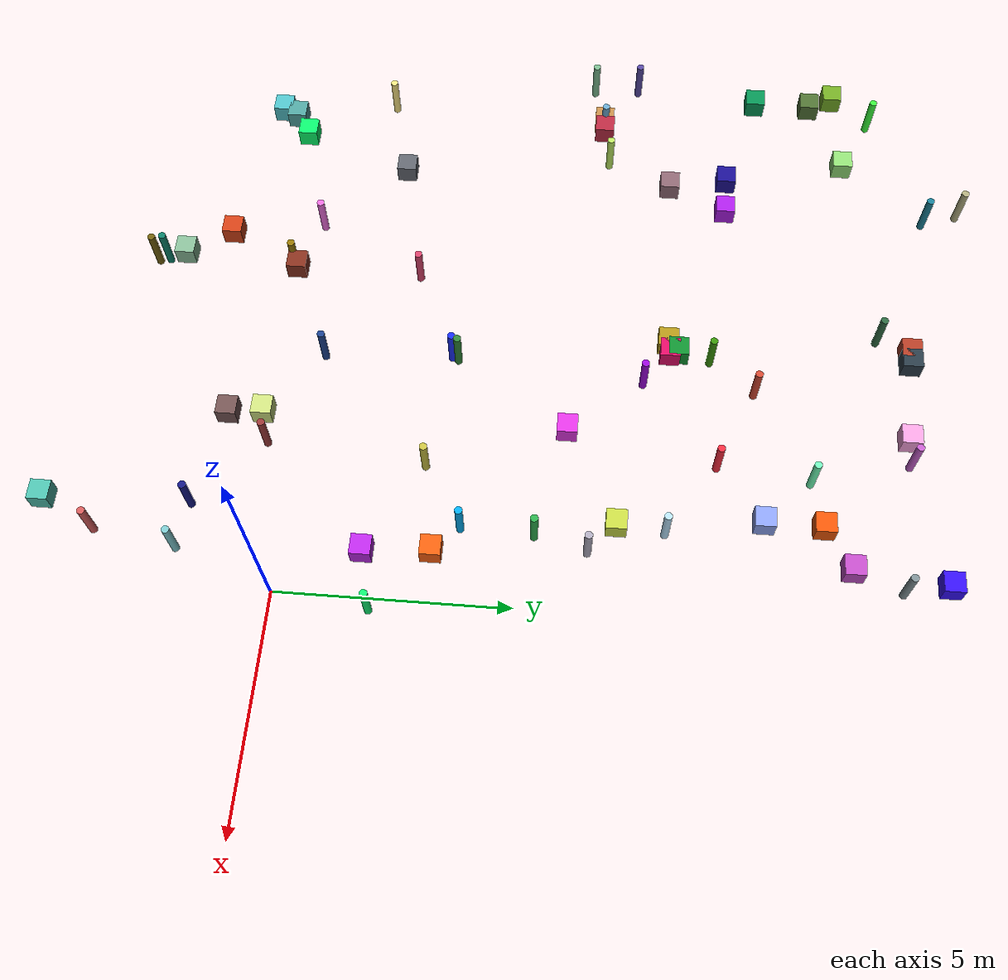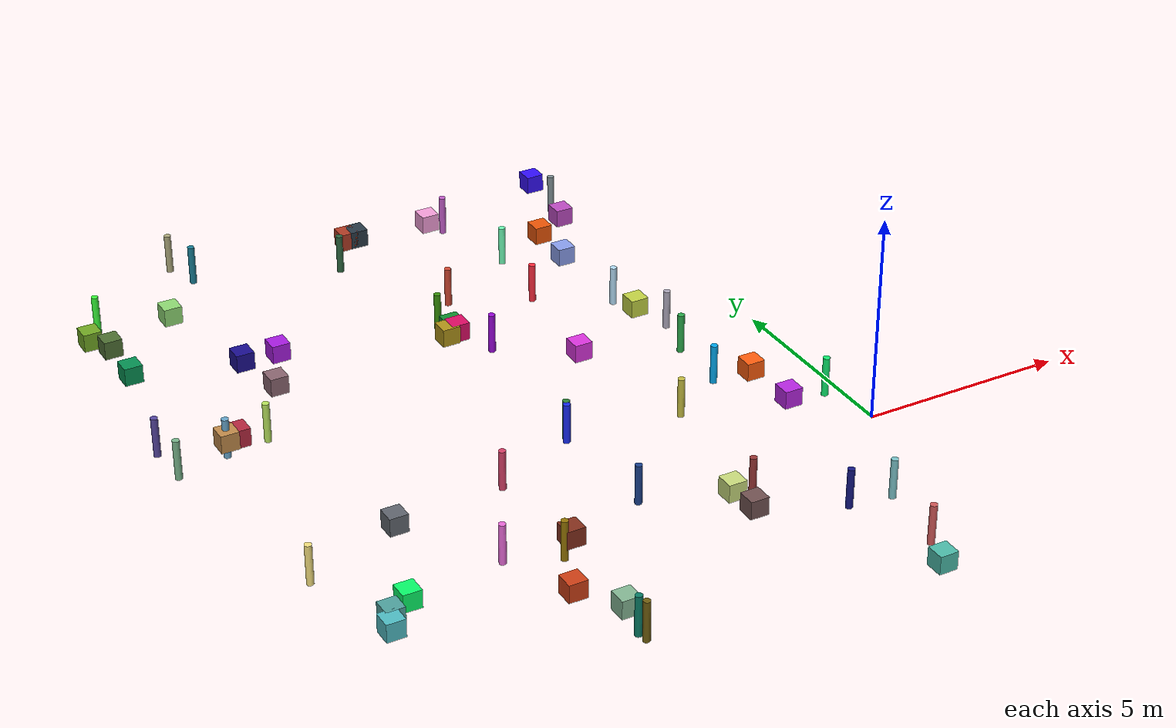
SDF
<sdf version="1.7">
 <world name="warehouse">
  <model name="ground_plane">
   <static>true</static>
   <link name="link">
    <collision name="collision">
     <geometry><plane><normal>0.0 0.0 1</normal><size>1 1</size></plane></geometry>
    </collision>
   </link>
  </model>
  <model name="unit_cylinder_0">
   <static>true</static>
   <pose>-13.67 12.86 0 0 0 0</pose>
   <link name="link">
    <collision name="collision">
     <geometry><cylinder><radius>0.085000</radius><length>1.000000</length></cylinder></geometry>
    </collision>
    <visual name="visual">
     <geometry><cylinder><radius>0.085000</radius><length>1.000000</length></cylinder></geometry>
     <material>
      <ambient>0.22643290799938598 0.9941781518883074 0.23284495869942612 1</ambient>
      <diffuse>0.22643290799938598 0.9941781518883074 0.23284495869942612 1</diffuse>
      <script><uri>file://media/materials/scripts/gazebo.material</uri><name>Gazebo/RandomColor0</name></script>
     </material>
    </visual>
   </link>
  </model>
  <model name="unit_box_1">
   <static>true</static>
   <pose>-12.08 12.1 0 0 0 0</pose>
   <link name="link">
    <collision name="collision">
     <geometry><box><size>0.450000 0.450000 0.450000</size></box></geometry>
    </collision>
    <visual name="visual">
     <geometry><box><size>0.450000 0.450000 0.450000</size></box></geometry>
     <material>
      <ambient>0.5570859868462826 0.8457534030599224 0.4479570237474677 1</ambient>
      <diffuse>0.5570859868462826 0.8457534030599224 0.4479570237474677 1</diffuse>
      <script><uri>file://media/materials/scripts/gazebo.material</uri><name>Gazebo/RandomColor1</name></script>
     </material>
    </visual>
   </link>
  </model>
  <model name="unit_cylinder_1">
   <static>true</static>
   <pose>-6.13 3.12 0 0 0 0</pose>
   <link name="link">
    <collision name="collision">
     <geometry><cylinder><radius>0.085000</radius><length>1.000000</length></cylinder></geometry>
    </collision>
    <visual name="visual">
     <geometry><cylinder><radius>0.085000</radius><length>1.000000</length></cylinder></geometry>
     <material>
      <ambient>0.09784602003423482 0.17393467383219674 0.9556567217976356 1</ambient>
      <diffuse>0.09784602003423482 0.17393467383219674 0.9556567217976356 1</diffuse>
      <script><uri>file://media/materials/scripts/gazebo.material</uri><name>Gazebo/RandomColor1</name></script>
     </material>
    </visual>
   </link>
  </model>
  <model name="unit_cylinder_3">
   <static>true</static>
   <pose>0.08 1.98 0 0 0 0</pose>
   <link name="link">
    <collision name="collision">
     <geometry><cylinder><radius>0.085000</radius><length>1.000000</length></cylinder></geometry>
    </collision>
    <visual name="visual">
     <geometry><cylinder><radius>0.085000</radius><length>1.000000</length></cylinder></geometry>
     <material>
      <ambient>0.060179974581356266 0.9140892420490736 0.43451321520392694 1</ambient>
      <diffuse>0.060179974581356266 0.9140892420490736 0.43451321520392694 1</diffuse>
      <script><uri>file://media/materials/scripts/gazebo.material</uri><name>Gazebo/RandomColor3</name></script>
     </material>
    </visual>
   </link>
  </model>
  <model name="unit_box_7">
   <static>true</static>
   <pose>-8.14 -0.72 0 0 0 0</pose>
   <link name="link">
    <collision name="collision">
     <geometry><box><size>0.450000 0.450000 0.450000</size></box></geometry>
    </collision>
    <visual name="visual">
     <geometry><box><size>0.450000 0.450000 0.450000</size></box></geometry>
     <material>
      <ambient>0.5168723721213653 0.18612557674347563 0.11343065469603886 1</ambient>
      <diffuse>0.5168723721213653 0.18612557674347563 0.11343065469603886 1</diffuse>
      <script><uri>file://media/materials/scripts/gazebo.material</uri><name>Gazebo/RandomColor7</name></script>
     </material>
    </visual>
   </link>
  </model>
  <model name="unit_cylinder_9">
   <static>true</static>
   <pose>-1.0 -2.29 0 0 0 0</pose>
   <link name="link">
    <collision name="collision">
     <geometry><cylinder><radius>0.085000</radius><length>1.000000</length></cylinder></geometry>
    </collision>
    <visual name="visual">
     <geometry><cylinder><radius>0.085000</radius><length>1.000000</length></cylinder></geometry>
     <material>
      <ambient>0.47917200845864116 0.7596924477369887 0.7812414801510158 1</ambient>
      <diffuse>0.47917200845864116 0.7596924477369887 0.7812414801510158 1</diffuse>
      <script><uri>file://media/materials/scripts/gazebo.material</uri><name>Gazebo/RandomColor9</name></script>
     </material>
    </visual>
   </link>
  </model>
  <model name="unit_box_11">
   <static>true</static>
   <pose>-11.18 1.52 0 0 0 0</pose>
   <link name="link">
    <collision name="collision">
     <geometry><box><size>0.450000 0.450000 0.450000</size></box></geometry>
    </collision>
    <visual name="visual">
     <geometry><box><size>0.450000 0.450000 0.450000</size></box></geometry>
     <material>
      <ambient>0.37673299942862404 0.3952141431706322 0.4295230742137489 1</ambient>
      <diffuse>0.37673299942862404 0.3952141431706322 0.4295230742137489 1</diffuse>
      <script><uri>file://media/materials/scripts/gazebo.material</uri><name>Gazebo/RandomColor11</name></script>
     </material>
    </visual>
   </link>
  </model>
  <model name="unit_cylinder_12">
   <static>true</static>
   <pose>-1.89 3.71 0 0 0 0</pose>
   <link name="link">
    <collision name="collision">
     <geometry><cylinder><radius>0.085000</radius><length>1.000000</length></cylinder></geometry>
    </collision>
    <visual name="visual">
     <geometry><cylinder><radius>0.085000</radius><length>1.000000</length></cylinder></geometry>
     <material>
      <ambient>0.012275883180770775 0.6622361219837193 0.9321971385392855 1</ambient>
      <diffuse>0.012275883180770775 0.6622361219837193 0.9321971385392855 1</diffuse>
      <script><uri>file://media/materials/scripts/gazebo.material</uri><name>Gazebo/RandomColor12</name></script>
     </material>
    </visual>
   </link>
  </model>
  <model name="unit_cylinder_16">
   <static>true</static>
   <pose>-2.09 8.08 0 0 0 0</pose>
   <link name="link">
    <collision name="collision">
     <geometry><cylinder><radius>0.085000</radius><length>1.000000</length></cylinder></geometry>
    </collision>
    <visual name="visual">
     <geometry><cylinder><radius>0.085000</radius><length>1.000000</length></cylinder></geometry>
     <material>
      <ambient>0.7019170491834359 0.8626682858190757 0.9624429712199282 1</ambient>
      <diffuse>0.7019170491834359 0.8626682858190757 0.9624429712199282 1</diffuse>
      <script><uri>file://media/materials/scripts/gazebo.material</uri><name>Gazebo/RandomColor16</name></script>
     </material>
    </visual>
   </link>
  </model>
  <model name="unit_box_17">
   <static>true</static>
   <pose>-4.24 -0.88 0 0 0 0</pose>
   <link name="link">
    <collision name="collision">
     <geometry><box><size>0.450000 0.450000 0.450000</size></box></geometry>
    </collision>
    <visual name="visual">
     <geometry><box><size>0.450000 0.450000 0.450000</size></box></geometry>
     <material>
      <ambient>0.7868893250944816 0.8572085940770652 0.4870029069797954 1</ambient>
      <diffuse>0.7868893250944816 0.8572085940770652 0.4870029069797954 1</diffuse>
      <script><uri>file://media/materials/scripts/gazebo.material</uri><name>Gazebo/RandomColor17</name></script>
     </material>
    </visual>
   </link>
  </model>
  <model name="unit_cylinder_17">
   <static>true</static>
   <pose>-3.52 11.22 0 0 0 0</pose>
   <link name="link">
    <collision name="collision">
     <geometry><cylinder><radius>0.085000</radius><length>1.000000</length></cylinder></geometry>
    </collision>
    <visual name="visual">
     <geometry><cylinder><radius>0.085000</radius><length>1.000000</length></cylinder></geometry>
     <material>
      <ambient>0.4379534641081445 0.9886863089113719 0.7163692880442633 1</ambient>
      <diffuse>0.4379534641081445 0.9886863089113719 0.7163692880442633 1</diffuse>
      <script><uri>file://media/materials/scripts/gazebo.material</uri><name>Gazebo/RandomColor17</name></script>
     </material>
    </visual>
   </link>
  </model>
  <model name="unit_box_19">
   <static>true</static>
   <pose>-12.84 -1.78 0 0 0 0</pose>
   <link name="link">
    <collision name="collision">
     <geometry><box><size>0.450000 0.450000 0.450000</size></box></geometry>
    </collision>
    <visual name="visual">
     <geometry><box><size>0.450000 0.450000 0.450000</size></box></geometry>
     <material>
      <ambient>0.3059121022247705 0.7342512263007779 0.7647108240388901 1</ambient>
      <diffuse>0.3059121022247705 0.7342512263007779 0.7647108240388901 1</diffuse>
      <script><uri>file://media/materials/scripts/gazebo.material</uri><name>Gazebo/RandomColor19</name></script>
     </material>
    </visual>
   </link>
  </model>
  <model name="unit_cylinder_19">
   <static>true</static>
   <pose>-14.41 7.07 0 0 0 0</pose>
   <link name="link">
    <collision name="collision">
     <geometry><cylinder><radius>0.085000</radius><length>1.000000</length></cylinder></geometry>
    </collision>
    <visual name="visual">
     <geometry><cylinder><radius>0.085000</radius><length>1.000000</length></cylinder></geometry>
     <material>
      <ambient>0.33439763254681787 0.27544390366701443 0.6192885381677653 1</ambient>
      <diffuse>0.33439763254681787 0.27544390366701443 0.6192885381677653 1</diffuse>
      <script><uri>file://media/materials/scripts/gazebo.material</uri><name>Gazebo/RandomColor19</name></script>
     </material>
    </visual>
   </link>
  </model>
  <model name="unit_box_20">
   <static>true</static>
   <pose>-6.79 13.47 0 0 0 0</pose>
   <link name="link">
    <collision name="collision">
     <geometry><box><size>0.450000 0.450000 0.450000</size></box></geometry>
    </collision>
    <visual name="visual">
     <geometry><box><size>0.450000 0.450000 0.450000</size></box></geometry>
     <material>
      <ambient>0.6862984897451937 0.23210744080559476 0.14412165187279047 1</ambient>
      <diffuse>0.6862984897451937 0.23210744080559476 0.14412165187279047 1</diffuse>
      <script><uri>file://media/materials/scripts/gazebo.material</uri><name>Gazebo/RandomColor20</name></script>
     </material>
    </visual>
   </link>
  </model>
  <model name="unit_cylinder_21">
   <static>true</static>
   <pose>-8.35 -3.89 0 0 0 0</pose>
   <link name="link">
    <collision name="collision">
     <geometry><cylinder><radius>0.085000</radius><length>1.000000</length></cylinder></geometry>
    </collision>
    <visual name="visual">
     <geometry><cylinder><radius>0.085000</radius><length>1.000000</length></cylinder></geometry>
     <material>
      <ambient>0.037104033649876356 0.486294414116082 0.3978003462148725 1</ambient>
      <diffuse>0.037104033649876356 0.486294414116082 0.3978003462148725 1</diffuse>
      <script><uri>file://media/materials/scripts/gazebo.material</uri><name>Gazebo/RandomColor21</name></script>
     </material>
    </visual>
   </link>
  </model>
  <model name="unit_box_24">
   <static>true</static>
   <pose>-4.58 13.34 0 0 0 0</pose>
   <link name="link">
    <collision name="collision">
     <geometry><box><size>0.450000 0.450000 0.450000</size></box></geometry>
    </collision>
    <visual name="visual">
     <geometry><box><size>0.450000 0.450000 0.450000</size></box></geometry>
     <material>
      <ambient>0.9587381781678423 0.6205069236833495 0.8506780297745122 1</ambient>
      <diffuse>0.9587381781678423 0.6205069236833495 0.8506780297745122 1</diffuse>
      <script><uri>file://media/materials/scripts/gazebo.material</uri><name>Gazebo/RandomColor24</name></script>
     </material>
    </visual>
   </link>
  </model>
  <model name="unit_cylinder_24">
   <static>true</static>
   <pose>-3.76 9.17 0 0 0 0</pose>
   <link name="link">
    <collision name="collision">
     <geometry><cylinder><radius>0.085000</radius><length>1.000000</length></cylinder></geometry>
    </collision>
    <visual name="visual">
     <geometry><cylinder><radius>0.085000</radius><length>1.000000</length></cylinder></geometry>
     <material>
      <ambient>0.9765241044740991 0.17076668221313585 0.2479138787878924 1</ambient>
      <diffuse>0.9765241044740991 0.17076668221313585 0.2479138787878924 1</diffuse>
      <script><uri>file://media/materials/scripts/gazebo.material</uri><name>Gazebo/RandomColor24</name></script>
     </material>
    </visual>
   </link>
  </model>
  <model name="unit_cylinder_27">
   <static>true</static>
   <pose>-4.1 13.41 0 0 0 0</pose>
   <link name="link">
    <collision name="collision">
     <geometry><cylinder><radius>0.085000</radius><length>1.000000</length></cylinder></geometry>
    </collision>
    <visual name="visual">
     <geometry><cylinder><radius>0.085000</radius><length>1.000000</length></cylinder></geometry>
     <material>
      <ambient>0.763955425483993 0.36652504070580116 0.7901160668986454 1</ambient>
      <diffuse>0.763955425483993 0.36652504070580116 0.7901160668986454 1</diffuse>
      <script><uri>file://media/materials/scripts/gazebo.material</uri><name>Gazebo/RandomColor27</name></script>
     </material>
    </visual>
   </link>
  </model>
  <model name="unit_box_28">
   <static>true</static>
   <pose>-2.34 11.41 0 0 0 0</pose>
   <link name="link">
    <collision name="collision">
     <geometry><box><size>0.450000 0.450000 0.450000</size></box></geometry>
    </collision>
    <visual name="visual">
     <geometry><box><size>0.450000 0.450000 0.450000</size></box></geometry>
     <material>
      <ambient>0.9207976336236732 0.3325437663453513 0.03099404749056145 1</ambient>
      <diffuse>0.9207976336236732 0.3325437663453513 0.03099404749056145 1</diffuse>
      <script><uri>file://media/materials/scripts/gazebo.material</uri><name>Gazebo/RandomColor28</name></script>
     </material>
    </visual>
   </link>
  </model>
  <model name="unit_cylinder_29">
   <static>true</static>
   <pose>-13.42 0.95 0 0 0 0</pose>
   <link name="link">
    <collision name="collision">
     <geometry><cylinder><radius>0.085000</radius><length>1.000000</length></cylinder></geometry>
    </collision>
    <visual name="visual">
     <geometry><cylinder><radius>0.085000</radius><length>1.000000</length></cylinder></geometry>
     <material>
      <ambient>0.9591847221061538 0.8790110279043838 0.49725267735916456 1</ambient>
      <diffuse>0.9591847221061538 0.8790110279043838 0.49725267735916456 1</diffuse>
      <script><uri>file://media/materials/scripts/gazebo.material</uri><name>Gazebo/RandomColor29</name></script>
     </material>
    </visual>
   </link>
  </model>
  <model name="unit_box_31">
   <static>true</static>
   <pose>-1.2 3.18 0 0 0 0</pose>
   <link name="link">
    <collision name="collision">
     <geometry><box><size>0.450000 0.450000 0.450000</size></box></geometry>
    </collision>
    <visual name="visual">
     <geometry><box><size>0.450000 0.450000 0.450000</size></box></geometry>
     <material>
      <ambient>0.9946142730730487 0.36753143426789714 0.0569219011422849 1</ambient>
      <diffuse>0.9946142730730487 0.36753143426789714 0.0569219011422849 1</diffuse>
      <script><uri>file://media/materials/scripts/gazebo.material</uri><name>Gazebo/RandomColor31</name></script>
     </material>
    </visual>
   </link>
  </model>
  <model name="unit_box_32">
   <static>true</static>
   <pose>-6.44 8.24 0 0 0 0</pose>
   <link name="link">
    <collision name="collision">
     <geometry><box><size>0.450000 0.450000 0.450000</size></box></geometry>
    </collision>
    <visual name="visual">
     <geometry><box><size>0.450000 0.450000 0.450000</size></box></geometry>
     <material>
      <ambient>0.06136194269998829 0.5544427878669265 0.18517186416893705 1</ambient>
      <diffuse>0.06136194269998829 0.5544427878669265 0.18517186416893705 1</diffuse>
      <script><uri>file://media/materials/scripts/gazebo.material</uri><name>Gazebo/RandomColor32</name></script>
     </material>
    </visual>
   </link>
  </model>
  <model name="unit_cylinder_33">
   <static>true</static>
   <pose>-6.44 8.99 0 0 0 0</pose>
   <link name="link">
    <collision name="collision">
     <geometry><cylinder><radius>0.085000</radius><length>1.000000</length></cylinder></geometry>
    </collision>
    <visual name="visual">
     <geometry><cylinder><radius>0.085000</radius><length>1.000000</length></cylinder></geometry>
     <material>
      <ambient>0.21944316927953755 0.5661843804100053 0.03708273984998711 1</ambient>
      <diffuse>0.21944316927953755 0.5661843804100053 0.03708273984998711 1</diffuse>
      <script><uri>file://media/materials/scripts/gazebo.material</uri><name>Gazebo/RandomColor33</name></script>
     </material>
    </visual>
   </link>
  </model>
  <model name="unit_cylinder_38">
   <static>true</static>
   <pose>-3.64 -0.75 0 0 0 0</pose>
   <link name="link">
    <collision name="collision">
     <geometry><cylinder><radius>0.085000</radius><length>1.000000</length></cylinder></geometry>
    </collision>
    <visual name="visual">
     <geometry><cylinder><radius>0.085000</radius><length>1.000000</length></cylinder></geometry>
     <material>
      <ambient>0.5926736668777496 0.21562802654774693 0.21455888320476446 1</ambient>
      <diffuse>0.5926736668777496 0.21562802654774693 0.21455888320476446 1</diffuse>
      <script><uri>file://media/materials/scripts/gazebo.material</uri><name>Gazebo/RandomColor38</name></script>
     </material>
    </visual>
   </link>
  </model>
  <model name="unit_cylinder_40">
   <static>true</static>
   <pose>-3.32 2.81 0 0 0 0</pose>
   <link name="link">
    <collision name="collision">
     <geometry><cylinder><radius>0.085000</radius><length>1.000000</length></cylinder></geometry>
    </collision>
    <visual name="visual">
     <geometry><cylinder><radius>0.085000</radius><length>1.000000</length></cylinder></geometry>
     <material>
      <ambient>0.7697487792190992 0.7369526263372518 0.25564642800721116 1</ambient>
      <diffuse>0.7697487792190992 0.7369526263372518 0.25564642800721116 1</diffuse>
      <script><uri>file://media/materials/scripts/gazebo.material</uri><name>Gazebo/RandomColor40</name></script>
     </material>
    </visual>
   </link>
  </model>
  <model name="unit_box_41">
   <static>true</static>
   <pose>-11.4 9.28 0 0 0 0</pose>
   <link name="link">
    <collision name="collision">
     <geometry><box><size>0.450000 0.450000 0.450000</size></box></geometry>
    </collision>
    <visual name="visual">
     <geometry><box><size>0.450000 0.450000 0.450000</size></box></geometry>
     <material>
      <ambient>0.1030325011765485 0.053453544231831795 0.5618673183061719 1</ambient>
      <diffuse>0.1030325011765485 0.053453544231831795 0.5618673183061719 1</diffuse>
      <script><uri>file://media/materials/scripts/gazebo.material</uri><name>Gazebo/RandomColor41</name></script>
     </material>
    </visual>
   </link>
  </model>
  <model name="unit_cylinder_43">
   <static>true</static>
   <pose>-1.29 -4.13 0 0 0 0</pose>
   <link name="link">
    <collision name="collision">
     <geometry><cylinder><radius>0.085000</radius><length>1.000000</length></cylinder></geometry>
    </collision>
    <visual name="visual">
     <geometry><cylinder><radius>0.085000</radius><length>1.000000</length></cylinder></geometry>
     <material>
      <ambient>0.811323015192224 0.3466288053665355 0.3474456620234265 1</ambient>
      <diffuse>0.811323015192224 0.3466288053665355 0.3474456620234265 1</diffuse>
      <script><uri>file://media/materials/scripts/gazebo.material</uri><name>Gazebo/RandomColor43</name></script>
     </material>
    </visual>
   </link>
  </model>
  <model name="unit_box_44">
   <static>true</static>
   <pose>-6.39 8.05 0 0 0 0</pose>
   <link name="link">
    <collision name="collision">
     <geometry><box><size>0.450000 0.450000 0.450000</size></box></geometry>
    </collision>
    <visual name="visual">
     <geometry><box><size>0.450000 0.450000 0.450000</size></box></geometry>
     <material>
      <ambient>0.8668849303268596 0.044487189742945854 0.39549226400259907 1</ambient>
      <diffuse>0.8668849303268596 0.044487189742945854 0.39549226400259907 1</diffuse>
      <script><uri>file://media/materials/scripts/gazebo.material</uri><name>Gazebo/RandomColor44</name></script>
     </material>
    </visual>
   </link>
  </model>
  <model name="unit_box_45">
   <static>true</static>
   <pose>-2.37 10.14 0 0 0 0</pose>
   <link name="link">
    <collision name="collision">
     <geometry><box><size>0.450000 0.450000 0.450000</size></box></geometry>
    </collision>
    <visual name="visual">
     <geometry><box><size>0.450000 0.450000 0.450000</size></box></geometry>
     <material>
      <ambient>0.5375153005524457 0.6208842888346856 0.9283183611315334 1</ambient>
      <diffuse>0.5375153005524457 0.6208842888346856 0.9283183611315334 1</diffuse>
      <script><uri>file://media/materials/scripts/gazebo.material</uri><name>Gazebo/RandomColor45</name></script>
     </material>
    </visual>
   </link>
  </model>
  <model name="unit_box_47">
   <static>true</static>
   <pose>-14.18 11.91 0 0 0 0</pose>
   <link name="link">
    <collision name="collision">
     <geometry><box><size>0.450000 0.450000 0.450000</size></box></geometry>
    </collision>
    <visual name="visual">
     <geometry><box><size>0.450000 0.450000 0.450000</size></box></geometry>
     <material>
      <ambient>0.4444734742221532 0.6589304434669172 0.1382851445184664 1</ambient>
      <diffuse>0.4444734742221532 0.6589304434669172 0.1382851445184664 1</diffuse>
      <script><uri>file://media/materials/scripts/gazebo.material</uri><name>Gazebo/RandomColor47</name></script>
     </material>
    </visual>
   </link>
  </model>
  <model name="unit_cylinder_48">
   <static>true</static>
   <pose>-14.33 5.98 0 0 0 0</pose>
   <link name="link">
    <collision name="collision">
     <geometry><cylinder><radius>0.085000</radius><length>1.000000</length></cylinder></geometry>
    </collision>
    <visual name="visual">
     <geometry><cylinder><radius>0.085000</radius><length>1.000000</length></cylinder></geometry>
     <material>
      <ambient>0.473278132346882 0.7101784076360161 0.5484825160226132 1</ambient>
      <diffuse>0.473278132346882 0.7101784076360161 0.5484825160226132 1</diffuse>
      <script><uri>file://media/materials/scripts/gazebo.material</uri><name>Gazebo/RandomColor48</name></script>
     </material>
    </visual>
   </link>
  </model>
  <model name="unit_box_49">
   <static>true</static>
   <pose>-10.5 9.26 0 0 0 0</pose>
   <link name="link">
    <collision name="collision">
     <geometry><box><size>0.450000 0.450000 0.450000</size></box></geometry>
    </collision>
    <visual name="visual">
     <geometry><box><size>0.450000 0.450000 0.450000</size></box></geometry>
     <material>
      <ambient>0.6563852491329422 0.10908642655300127 0.8806211698491011 1</ambient>
      <diffuse>0.6563852491329422 0.10908642655300127 0.8806211698491011 1</diffuse>
      <script><uri>file://media/materials/scripts/gazebo.material</uri><name>Gazebo/RandomColor49</name></script>
     </material>
    </visual>
   </link>
  </model>
  <model name="unit_cylinder_52">
   <static>true</static>
   <pose>-5.96 0.21 0 0 0 0</pose>
   <link name="link">
    <collision name="collision">
     <geometry><cylinder><radius>0.085000</radius><length>1.000000</length></cylinder></geometry>
    </collision>
    <visual name="visual">
     <geometry><cylinder><radius>0.085000</radius><length>1.000000</length></cylinder></geometry>
     <material>
      <ambient>0.10502268471457288 0.2517500477304355 0.5472635710184758 1</ambient>
      <diffuse>0.10502268471457288 0.2517500477304355 0.5472635710184758 1</diffuse>
      <script><uri>file://media/materials/scripts/gazebo.material</uri><name>Gazebo/RandomColor52</name></script>
     </material>
    </visual>
   </link>
  </model>
  <model name="unit_box_53">
   <static>true</static>
   <pose>-1.2 13.99 0 0 0 0</pose>
   <link name="link">
    <collision name="collision">
     <geometry><box><size>0.450000 0.450000 0.450000</size></box></geometry>
    </collision>
    <visual name="visual">
     <geometry><box><size>0.450000 0.450000 0.450000</size></box></geometry>
     <material>
      <ambient>0.2021443051240609 0.05778919233160884 0.9777399155508683 1</ambient>
      <diffuse>0.2021443051240609 0.05778919233160884 0.9777399155508683 1</diffuse>
      <script><uri>file://media/materials/scripts/gazebo.material</uri><name>Gazebo/RandomColor53</name></script>
     </material>
    </visual>
   </link>
  </model>
  <model name="unit_cylinder_53">
   <static>true</static>
   <pose>-9.58 -0.34 0 0 0 0</pose>
   <link name="link">
    <collision name="collision">
     <geometry><cylinder><radius>0.085000</radius><length>1.000000</length></cylinder></geometry>
    </collision>
    <visual name="visual">
     <geometry><cylinder><radius>0.085000</radius><length>1.000000</length></cylinder></geometry>
     <material>
      <ambient>0.9116901493969704 0.41712172639454403 0.8489233088418865 1</ambient>
      <diffuse>0.9116901493969704 0.41712172639454403 0.8489233088418865 1</diffuse>
      <script><uri>file://media/materials/scripts/gazebo.material</uri><name>Gazebo/RandomColor53</name></script>
     </material>
    </visual>
   </link>
  </model>
  <model name="unit_box_55">
   <static>true</static>
   <pose>-2.08 7.02 0 0 0 0</pose>
   <link name="link">
    <collision name="collision">
     <geometry><box><size>0.450000 0.450000 0.450000</size></box></geometry>
    </collision>
    <visual name="visual">
     <geometry><box><size>0.450000 0.450000 0.450000</size></box></geometry>
     <material>
      <ambient>0.7631155314183188 0.8253832832898576 0.26696841146645267 1</ambient>
      <diffuse>0.7631155314183188 0.8253832832898576 0.26696841146645267 1</diffuse>
      <script><uri>file://media/materials/scripts/gazebo.material</uri><name>Gazebo/RandomColor55</name></script>
     </material>
    </visual>
   </link>
  </model>
  <model name="unit_box_57">
   <static>true</static>
   <pose>-1.1 1.73 0 0 0 0</pose>
   <link name="link">
    <collision name="collision">
     <geometry><box><size>0.450000 0.450000 0.450000</size></box></geometry>
    </collision>
    <visual name="visual">
     <geometry><box><size>0.450000 0.450000 0.450000</size></box></geometry>
     <material>
      <ambient>0.7196996738707994 0.15150322498170465 0.8853359794810608 1</ambient>
      <diffuse>0.7196996738707994 0.15150322498170465 0.8853359794810608 1</diffuse>
      <script><uri>file://media/materials/scripts/gazebo.material</uri><name>Gazebo/RandomColor57</name></script>
     </material>
    </visual>
   </link>
  </model>
  <model name="unit_box_58">
   <static>true</static>
   <pose>-13.89 9.99 0 0 0 0</pose>
   <link name="link">
    <collision name="collision">
     <geometry><box><size>0.450000 0.450000 0.450000</size></box></geometry>
    </collision>
    <visual name="visual">
     <geometry><box><size>0.450000 0.450000 0.450000</size></box></geometry>
     <material>
      <ambient>0.018414253932852676 0.5613539037612933 0.3179942147667798 1</ambient>
      <diffuse>0.018414253932852676 0.5613539037612933 0.3179942147667798 1</diffuse>
      <script><uri>file://media/materials/scripts/gazebo.material</uri><name>Gazebo/RandomColor58</name></script>
     </material>
    </visual>
   </link>
  </model>
  <model name="unit_box_60">
   <static>true</static>
   <pose>-13.05 6.25 0 0 0 0</pose>
   <link name="link">
    <collision name="collision">
     <geometry><box><size>0.450000 0.450000 0.450000</size></box></geometry>
    </collision>
    <visual name="visual">
     <geometry><box><size>0.450000 0.450000 0.450000</size></box></geometry>
     <material>
      <ambient>0.7565597646634455 0.5418911848477955 0.290145735740283 1</ambient>
      <diffuse>0.7565597646634455 0.5418911848477955 0.290145735740283 1</diffuse>
      <script><uri>file://media/materials/scripts/gazebo.material</uri><name>Gazebo/RandomColor60</name></script>
     </material>
    </visual>
   </link>
  </model>
  <model name="unit_cylinder_61">
   <static>true</static>
   <pose>-6.07 3.26 0 0 0 0</pose>
   <link name="link">
    <collision name="collision">
     <geometry><cylinder><radius>0.085000</radius><length>1.000000</length></cylinder></geometry>
    </collision>
    <visual name="visual">
     <geometry><cylinder><radius>0.085000</radius><length>1.000000</length></cylinder></geometry>
     <material>
      <ambient>0.1832749844985485 0.5088504765682608 0.2118635328184989 1</ambient>
      <diffuse>0.1832749844985485 0.5088504765682608 0.2118635328184989 1</diffuse>
      <script><uri>file://media/materials/scripts/gazebo.material</uri><name>Gazebo/RandomColor61</name></script>
     </material>
    </visual>
   </link>
  </model>
  <model name="unit_cylinder_62">
   <static>true</static>
   <pose>-12.0 6.44 0 0 0 0</pose>
   <link name="link">
    <collision name="collision">
     <geometry><cylinder><radius>0.085000</radius><length>1.000000</length></cylinder></geometry>
    </collision>
    <visual name="visual">
     <geometry><cylinder><radius>0.085000</radius><length>1.000000</length></cylinder></geometry>
     <material>
      <ambient>0.7237117383923747 0.8961991000198072 0.36809686495751337 1</ambient>
      <diffuse>0.7237117383923747 0.8961991000198072 0.36809686495751337 1</diffuse>
      <script><uri>file://media/materials/scripts/gazebo.material</uri><name>Gazebo/RandomColor62</name></script>
     </material>
    </visual>
   </link>
  </model>
  <model name="unit_box_63">
   <static>true</static>
   <pose>-1.83 -5.25 0 0 0 0</pose>
   <link name="link">
    <collision name="collision">
     <geometry><box><size>0.450000 0.450000 0.450000</size></box></geometry>
    </collision>
    <visual name="visual">
     <geometry><box><size>0.450000 0.450000 0.450000</size></box></geometry>
     <material>
      <ambient>0.2969019243375275 0.7330111117765699 0.66425298789777 1</ambient>
      <diffuse>0.2969019243375275 0.7330111117765699 0.66425298789777 1</diffuse>
      <script><uri>file://media/materials/scripts/gazebo.material</uri><name>Gazebo/RandomColor63</name></script>
     </material>
    </visual>
   </link>
  </model>
  <model name="unit_cylinder_63">
   <static>true</static>
   <pose>-8.38 -0.86 0 0 0 0</pose>
   <link name="link">
    <collision name="collision">
     <geometry><cylinder><radius>0.085000</radius><length>1.000000</length></cylinder></geometry>
    </collision>
    <visual name="visual">
     <geometry><cylinder><radius>0.085000</radius><length>1.000000</length></cylinder></geometry>
     <material>
      <ambient>0.5799653655244241 0.4558322516238519 0.01976682233709426 1</ambient>
      <diffuse>0.5799653655244241 0.4558322516238519 0.01976682233709426 1</diffuse>
      <script><uri>file://media/materials/scripts/gazebo.material</uri><name>Gazebo/RandomColor63</name></script>
     </material>
    </visual>
   </link>
  </model>
  <model name="unit_box_68">
   <static>true</static>
   <pose>-6.52 13.47 0 0 0 0</pose>
   <link name="link">
    <collision name="collision">
     <geometry><box><size>0.450000 0.450000 0.450000</size></box></geometry>
    </collision>
    <visual name="visual">
     <geometry><box><size>0.450000 0.450000 0.450000</size></box></geometry>
     <material>
      <ambient>0.16239499568775873 0.22873754655106893 0.2772858891443398 1</ambient>
      <diffuse>0.16239499568775873 0.22873754655106893 0.2772858891443398 1</diffuse>
      <script><uri>file://media/materials/scripts/gazebo.material</uri><name>Gazebo/RandomColor68</name></script>
     </material>
    </visual>
   </link>
  </model>
  <model name="unit_box_70">
   <static>true</static>
   <pose>-6.67 8.0 0 0 0 0</pose>
   <link name="link">
    <collision name="collision">
     <geometry><box><size>0.450000 0.450000 0.450000</size></box></geometry>
    </collision>
    <visual name="visual">
     <geometry><box><size>0.450000 0.450000 0.450000</size></box></geometry>
     <material>
      <ambient>0.6929162221100496 0.5804195063677009 0.09610924455718495 1</ambient>
      <diffuse>0.6929162221100496 0.5804195063677009 0.09610924455718495 1</diffuse>
      <script><uri>file://media/materials/scripts/gazebo.material</uri><name>Gazebo/RandomColor70</name></script>
     </material>
    </visual>
   </link>
  </model>
  <model name="unit_cylinder_70">
   <static>true</static>
   <pose>-11.01 14.91 0 0 0 0</pose>
   <link name="link">
    <collision name="collision">
     <geometry><cylinder><radius>0.085000</radius><length>1.000000</length></cylinder></geometry>
    </collision>
    <visual name="visual">
     <geometry><cylinder><radius>0.085000</radius><length>1.000000</length></cylinder></geometry>
     <material>
      <ambient>0.6793398996708431 0.6611048301942815 0.48798588612909677 1</ambient>
      <diffuse>0.6793398996708431 0.6611048301942815 0.48798588612909677 1</diffuse>
      <script><uri>file://media/materials/scripts/gazebo.material</uri><name>Gazebo/RandomColor70</name></script>
     </material>
    </visual>
   </link>
  </model>
  <model name="unit_cylinder_72">
   <static>true</static>
   <pose>-8.3 -4.13 0 0 0 0</pose>
   <link name="link">
    <collision name="collision">
     <geometry><cylinder><radius>0.085000</radius><length>1.000000</length></cylinder></geometry>
    </collision>
    <visual name="visual">
     <geometry><cylinder><radius>0.085000</radius><length>1.000000</length></cylinder></geometry>
     <material>
      <ambient>0.4359725597864329 0.36335580516264265 0.05507019278873293 1</ambient>
      <diffuse>0.4359725597864329 0.36335580516264265 0.05507019278873293 1</diffuse>
      <script><uri>file://media/materials/scripts/gazebo.material</uri><name>Gazebo/RandomColor72</name></script>
     </material>
    </visual>
   </link>
  </model>
  <model name="unit_box_75">
   <static>true</static>
   <pose>-1.42 11.98 0 0 0 0</pose>
   <link name="link">
    <collision name="collision">
     <geometry><box><size>0.450000 0.450000 0.450000</size></box></geometry>
    </collision>
    <visual name="visual">
     <geometry><box><size>0.450000 0.450000 0.450000</size></box></geometry>
     <material>
      <ambient>0.7423834088190465 0.2962446979203075 0.7615319136132179 1</ambient>
      <diffuse>0.7423834088190465 0.2962446979203075 0.7615319136132179 1</diffuse>
      <script><uri>file://media/materials/scripts/gazebo.material</uri><name>Gazebo/RandomColor75</name></script>
     </material>
    </visual>
   </link>
  </model>
  <model name="unit_box_76">
   <static>true</static>
   <pose>-4.28 5.85 0 0 0 0</pose>
   <link name="link">
    <collision name="collision">
     <geometry><box><size>0.450000 0.450000 0.450000</size></box></geometry>
    </collision>
    <visual name="visual">
     <geometry><box><size>0.450000 0.450000 0.450000</size></box></geometry>
     <material>
      <ambient>0.8607178317014857 0.20371743426139388 0.8702878662373906 1</ambient>
      <diffuse>0.8607178317014857 0.20371743426139388 0.8702878662373906 1</diffuse>
      <script><uri>file://media/materials/scripts/gazebo.material</uri><name>Gazebo/RandomColor76</name></script>
     </material>
    </visual>
   </link>
  </model>
  <model name="unit_box_77">
   <static>true</static>
   <pose>-9.02 -2.39 0 0 0 0</pose>
   <link name="link">
    <collision name="collision">
     <geometry><box><size>0.450000 0.450000 0.450000</size></box></geometry>
    </collision>
    <visual name="visual">
     <geometry><box><size>0.450000 0.450000 0.450000</size></box></geometry>
     <material>
      <ambient>0.805733801177348 0.24721324694157087 0.08421301842789752 1</ambient>
      <diffuse>0.805733801177348 0.24721324694157087 0.08421301842789752 1</diffuse>
      <script><uri>file://media/materials/scripts/gazebo.material</uri><name>Gazebo/RandomColor77</name></script>
     </material>
    </visual>
   </link>
  </model>
  <model name="unit_cylinder_77">
   <static>true</static>
   <pose>-7.27 12.81 0 0 0 0</pose>
   <link name="link">
    <collision name="collision">
     <geometry><cylinder><radius>0.085000</radius><length>1.000000</length></cylinder></geometry>
    </collision>
    <visual name="visual">
     <geometry><cylinder><radius>0.085000</radius><length>1.000000</length></cylinder></geometry>
     <material>
      <ambient>0.17998216128398004 0.40272400767989625 0.25037843323333453 1</ambient>
      <diffuse>0.17998216128398004 0.40272400767989625 0.25037843323333453 1</diffuse>
      <script><uri>file://media/materials/scripts/gazebo.material</uri><name>Gazebo/RandomColor77</name></script>
     </material>
    </visual>
   </link>
  </model>
  <model name="unit_cylinder_78">
   <static>true</static>
   <pose>-5.66 9.99 0 0 0 0</pose>
   <link name="link">
    <collision name="collision">
     <geometry><cylinder><radius>0.085000</radius><length>1.000000</length></cylinder></geometry>
    </collision>
    <visual name="visual">
     <geometry><cylinder><radius>0.085000</radius><length>1.000000</length></cylinder></geometry>
     <material>
      <ambient>0.8099578694111497 0.27819847138036746 0.1947826178766905 1</ambient>
      <diffuse>0.8099578694111497 0.27819847138036746 0.1947826178766905 1</diffuse>
      <script><uri>file://media/materials/scripts/gazebo.material</uri><name>Gazebo/RandomColor78</name></script>
     </material>
    </visual>
   </link>
  </model>
  <model name="unit_box_79">
   <static>true</static>
   <pose>-13.88 11.34 0 0 0 0</pose>
   <link name="link">
    <collision name="collision">
     <geometry><box><size>0.450000 0.450000 0.450000</size></box></geometry>
    </collision>
    <visual name="visual">
     <geometry><box><size>0.450000 0.450000 0.450000</size></box></geometry>
     <material>
      <ambient>0.3060728129950576 0.4372857329951626 0.2010570124722345 1</ambient>
      <diffuse>0.3060728129950576 0.4372857329951626 0.2010570124722345 1</diffuse>
      <script><uri>file://media/materials/scripts/gazebo.material</uri><name>Gazebo/RandomColor79</name></script>
     </material>
    </visual>
   </link>
  </model>
  <model name="unit_box_80">
   <static>true</static>
   <pose>-8.35 -3.39 0 0 0 0</pose>
   <link name="link">
    <collision name="collision">
     <geometry><box><size>0.450000 0.450000 0.450000</size></box></geometry>
    </collision>
    <visual name="visual">
     <geometry><box><size>0.450000 0.450000 0.450000</size></box></geometry>
     <material>
      <ambient>0.519736725864656 0.7176587978809865 0.5806464811956142 1</ambient>
      <diffuse>0.519736725864656 0.7176587978809865 0.5806464811956142 1</diffuse>
      <script><uri>file://media/materials/scripts/gazebo.material</uri><name>Gazebo/RandomColor80</name></script>
     </material>
    </visual>
   </link>
  </model>
  <model name="unit_cylinder_80">
   <static>true</static>
   <pose>-1.83 5.3 0 0 0 0</pose>
   <link name="link">
    <collision name="collision">
     <geometry><cylinder><radius>0.085000</radius><length>1.000000</length></cylinder></geometry>
    </collision>
    <visual name="visual">
     <geometry><cylinder><radius>0.085000</radius><length>1.000000</length></cylinder></geometry>
     <material>
      <ambient>0.17417013541249182 0.6678264434255233 0.29891540771516756 1</ambient>
      <diffuse>0.17417013541249182 0.6678264434255233 0.29891540771516756 1</diffuse>
      <script><uri>file://media/materials/scripts/gazebo.material</uri><name>Gazebo/RandomColor80</name></script>
     </material>
    </visual>
   </link>
  </model>
  <model name="unit_box_81">
   <static>true</static>
   <pose>-12.12 -1.05 0 0 0 0</pose>
   <link name="link">
    <collision name="collision">
     <geometry><box><size>0.450000 0.450000 0.450000</size></box></geometry>
    </collision>
    <visual name="visual">
     <geometry><box><size>0.450000 0.450000 0.450000</size></box></geometry>
     <material>
      <ambient>0.03315431659951751 0.9756165567946432 0.4140698108049524 1</ambient>
      <diffuse>0.03315431659951751 0.9756165567946432 0.4140698108049524 1</diffuse>
      <script><uri>file://media/materials/scripts/gazebo.material</uri><name>Gazebo/RandomColor81</name></script>
     </material>
    </visual>
   </link>
  </model>
  <model name="unit_cylinder_82">
   <static>true</static>
   <pose>-2.04 -2.15 0 0 0 0</pose>
   <link name="link">
    <collision name="collision">
     <geometry><cylinder><radius>0.085000</radius><length>1.000000</length></cylinder></geometry>
    </collision>
    <visual name="visual">
     <geometry><cylinder><radius>0.085000</radius><length>1.000000</length></cylinder></geometry>
     <material>
      <ambient>0.07942484679548534 0.09045345693704054 0.5064549561558893 1</ambient>
      <diffuse>0.07942484679548534 0.09045345693704054 0.5064549561558893 1</diffuse>
      <script><uri>file://media/materials/scripts/gazebo.material</uri><name>Gazebo/RandomColor82</name></script>
     </material>
    </visual>
   </link>
  </model>
  <model name="unit_box_83">
   <static>true</static>
   <pose>-4.17 -1.65 0 0 0 0</pose>
   <link name="link">
    <collision name="collision">
     <geometry><box><size>0.450000 0.450000 0.450000</size></box></geometry>
    </collision>
    <visual name="visual">
     <geometry><box><size>0.450000 0.450000 0.450000</size></box></geometry>
     <material>
      <ambient>0.44327579348808355 0.3214815672706751 0.31856847434078595 1</ambient>
      <diffuse>0.44327579348808355 0.3214815672706751 0.31856847434078595 1</diffuse>
      <script><uri>file://media/materials/scripts/gazebo.material</uri><name>Gazebo/RandomColor83</name></script>
     </material>
    </visual>
   </link>
  </model>
  <model name="unit_box_85">
   <static>true</static>
   <pose>-11.13 7.92 0 0 0 0</pose>
   <link name="link">
    <collision name="collision">
     <geometry><box><size>0.450000 0.450000 0.450000</size></box></geometry>
    </collision>
    <visual name="visual">
     <geometry><box><size>0.450000 0.450000 0.450000</size></box></geometry>
     <material>
      <ambient>0.5406712029366728 0.39825281831387593 0.4391550393846779 1</ambient>
      <diffuse>0.5406712029366728 0.39825281831387593 0.4391550393846779 1</diffuse>
      <script><uri>file://media/materials/scripts/gazebo.material</uri><name>Gazebo/RandomColor85</name></script>
     </material>
    </visual>
   </link>
  </model>
  <model name="unit_cylinder_85">
   <static>true</static>
   <pose>-8.28 2.14 0 0 0 0</pose>
   <link name="link">
    <collision name="collision">
     <geometry><cylinder><radius>0.085000</radius><length>1.000000</length></cylinder></geometry>
    </collision>
    <visual name="visual">
     <geometry><cylinder><radius>0.085000</radius><length>1.000000</length></cylinder></geometry>
     <material>
      <ambient>0.8285960125276705 0.25508888183105294 0.4093444392668617 1</ambient>
      <diffuse>0.8285960125276705 0.25508888183105294 0.4093444392668617 1</diffuse>
      <script><uri>file://media/materials/scripts/gazebo.material</uri><name>Gazebo/RandomColor85</name></script>
     </material>
    </visual>
   </link>
  </model>
  <model name="unit_cylinder_87">
   <static>true</static>
   <pose>-13.05 6.27 0 0 0 0</pose>
   <link name="link">
    <collision name="collision">
     <geometry><cylinder><radius>0.085000</radius><length>1.000000</length></cylinder></geometry>
    </collision>
    <visual name="visual">
     <geometry><cylinder><radius>0.085000</radius><length>1.000000</length></cylinder></geometry>
     <material>
      <ambient>0.40840284075535327 0.6472314542882012 0.7908933554910478 1</ambient>
      <diffuse>0.40840284075535327 0.6472314542882012 0.7908933554910478 1</diffuse>
      <script><uri>file://media/materials/scripts/gazebo.material</uri><name>Gazebo/RandomColor87</name></script>
     </material>
    </visual>
   </link>
  </model>
  <model name="unit_box_89">
   <static>true</static>
   <pose>-12.67 -1.41 0 0 0 0</pose>
   <link name="link">
    <collision name="collision">
     <geometry><box><size>0.450000 0.450000 0.450000</size></box></geometry>
    </collision>
    <visual name="visual">
     <geometry><box><size>0.450000 0.450000 0.450000</size></box></geometry>
     <material>
      <ambient>0.3078126493176343 0.6306692083446852 0.61604526980761 1</ambient>
      <diffuse>0.3078126493176343 0.6306692083446852 0.61604526980761 1</diffuse>
      <script><uri>file://media/materials/scripts/gazebo.material</uri><name>Gazebo/RandomColor89</name></script>
     </material>
    </visual>
   </link>
  </model>
  <model name="unit_cylinder_89">
   <static>true</static>
   <pose>-1.54 6.45 0 0 0 0</pose>
   <link name="link">
    <collision name="collision">
     <geometry><cylinder><radius>0.085000</radius><length>1.000000</length></cylinder></geometry>
    </collision>
    <visual name="visual">
     <geometry><cylinder><radius>0.085000</radius><length>1.000000</length></cylinder></geometry>
     <material>
      <ambient>0.6760638914974331 0.6576006754613922 0.7309130015257451 1</ambient>
      <diffuse>0.6760638914974331 0.6576006754613922 0.7309130015257451 1</diffuse>
      <script><uri>file://media/materials/scripts/gazebo.material</uri><name>Gazebo/RandomColor89</name></script>
     </material>
    </visual>
   </link>
  </model>
  <model name="unit_cylinder_90">
   <static>true</static>
   <pose>-1.1 13.1 0 0 0 0</pose>
   <link name="link">
    <collision name="collision">
     <geometry><cylinder><radius>0.085000</radius><length>1.000000</length></cylinder></geometry>
    </collision>
    <visual name="visual">
     <geometry><cylinder><radius>0.085000</radius><length>1.000000</length></cylinder></geometry>
     <material>
      <ambient>0.4932318121296996 0.5564136017678479 0.5752339892931921 1</ambient>
      <diffuse>0.4932318121296996 0.5564136017678479 0.5752339892931921 1</diffuse>
      <script><uri>file://media/materials/scripts/gazebo.material</uri><name>Gazebo/RandomColor90</name></script>
     </material>
    </visual>
   </link>
  </model>
  <model name="unit_box_93">
   <static>true</static>
   <pose>-12.77 6.27 0 0 0 0</pose>
   <link name="link">
    <collision name="collision">
     <geometry><box><size>0.450000 0.450000 0.450000</size></box></geometry>
    </collision>
    <visual name="visual">
     <geometry><box><size>0.450000 0.450000 0.450000</size></box></geometry>
     <material>
      <ambient>0.7080027187789186 0.1551061920711163 0.24896662022977212 1</ambient>
      <diffuse>0.7080027187789186 0.1551061920711163 0.24896662022977212 1</diffuse>
      <script><uri>file://media/materials/scripts/gazebo.material</uri><name>Gazebo/RandomColor93</name></script>
     </material>
    </visual>
   </link>
  </model>
  <model name="unit_cylinder_96">
   <static>true</static>
   <pose>-5.75 7.49 0 0 0 0</pose>
   <link name="link">
    <collision name="collision">
     <geometry><cylinder><radius>0.085000</radius><length>1.000000</length></cylinder></geometry>
    </collision>
    <visual name="visual">
     <geometry><cylinder><radius>0.085000</radius><length>1.000000</length></cylinder></geometry>
     <material>
      <ambient>0.5985615477938121 0.035502609174405064 0.845138912997558 1</ambient>
      <diffuse>0.5985615477938121 0.035502609174405064 0.845138912997558 1</diffuse>
      <script><uri>file://media/materials/scripts/gazebo.material</uri><name>Gazebo/RandomColor96</name></script>
     </material>
    </visual>
   </link>
  </model>
  <model name="unit_cylinder_97">
   <static>true</static>
   <pose>-10.72 14.07 0 0 0 0</pose>
   <link name="link">
    <collision name="collision">
     <geometry><cylinder><radius>0.085000</radius><length>1.000000</length></cylinder></geometry>
    </collision>
    <visual name="visual">
     <geometry><cylinder><radius>0.085000</radius><length>1.000000</length></cylinder></geometry>
     <material>
      <ambient>0.09945119487990783 0.49298422480593507 0.5830874536432729 1</ambient>
      <diffuse>0.09945119487990783 0.49298422480593507 0.5830874536432729 1</diffuse>
      <script><uri>file://media/materials/scripts/gazebo.material</uri><name>Gazebo/RandomColor97</name></script>
     </material>
    </visual>
   </link>
  </model>
 </world>
</sdf>
